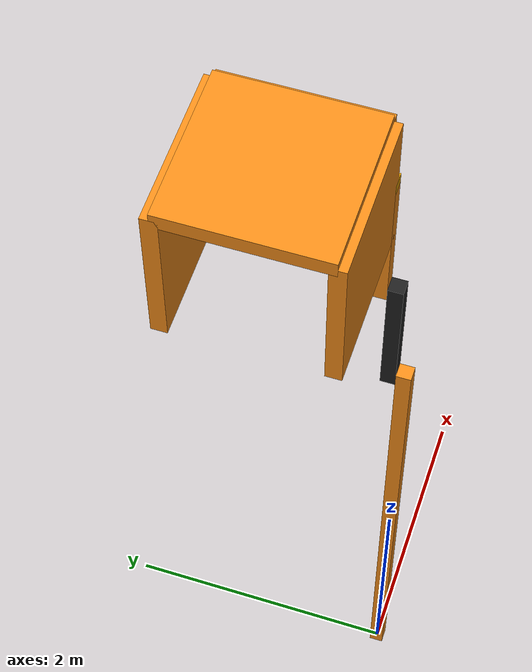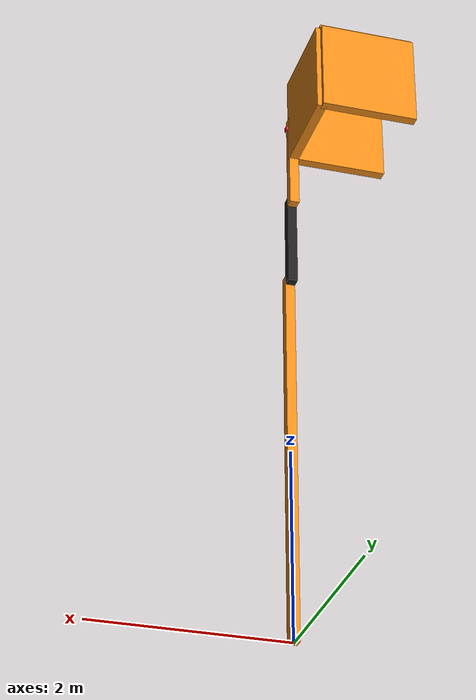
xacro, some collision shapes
<?xml version="1.0"?>
<!-- Revolute-Revolute Manipulator -->
<robot name="rrbot" xmlns:xacro="http://www.ros.org/wiki/xacro">

  <!-- Constants for robot dimensions -->
  <xacro:property name="PI" value="3.1415926535897931"/>
  <xacro:property name="mass" value="1" /> <!-- arbitrary value for mass -->
  <xacro:property name="width" value="0.1" /> <!-- Square dimensions (widthxwidth) of beams -->
  <xacro:property name="height1" value="4" /> <!-- Link 1 -->
  <xacro:property name="height2" value="1" /> <!-- Link 2 -->
  <xacro:property name="height3" value="1" /> <!-- Link 3 -->
  <xacro:property name="camera_link" value="0.05" /> <!-- Size of square 'camera' box -->
  <xacro:property name="axel_offset" value="0.05" /> <!-- Space btw top of beam and the each joint -->

  <!-- Import all Gazebo-customization elements, including Gazebo colors -->
  <xacro:include filename="$(find rrbot_description)/urdf/rrbot.gazebo" />
  <!-- Import Rviz colors -->
  <xacro:include filename="$(find rrbot_description)/urdf/materials.xacro" />

  <!-- Used for fixing robot to Gazebo 'base_link' -->
  <link name="world"/>

  <joint name="fixed" type="fixed">
    <parent link="world"/>
    <child link="link1"/>
  </joint>

  <!-- Box Links-->
  <link name="box1">
    <collision>
      <origin xyz="0 0 0" rpy="0 0 0"/>
      <geometry>
	<box size="0.1 1 1"/>
      </geometry>
    </collision>
    <visual>
      <origin xyz="0 0 0" rpy="0 0 0"/>
      <geometry>
	<box size="0.1 1 1"/>
      </geometry>
      <material name="orange"/>
    </visual>
  </link>
  <joint name="boxjoint1" type="fixed">
    <parent link="link3"/>
    <child link="box1"/>
    <origin xyz="0 0.5 1" rpy="0 0 0"/>
    <axis xyz="0 1 0"/>
    <dynamics damping="0.7"/>
  </joint>

  <link name="box2">
    <collision>
      <origin xyz="0 0 0" rpy="0 0 0"/>
      <geometry>
	<box size="1 0.1 1"/>
      </geometry>
    </collision>
    <visual>
      <origin xyz="0 0 0" rpy="0 0 0"/>
      <geometry>
	<box size="1 0.1 1"/>
      </geometry>
      <material name="orange"/>
    </visual>
  </link>
  <joint name="boxjoint2" type="fixed">
    <parent link="link3"/>
    <child link="box2"/>
    <origin xyz="-0.5 1 1" rpy="0 0 0"/>
    <axis xyz="0 1 0"/>
    <dynamics damping="0.7"/>
  </joint>

  <link name="box3">
    <collision>
      <origin xyz="0 0 0" rpy="0 0 0"/>
      <geometry>
	<box size="1 0.1 1"/>
      </geometry>
    </collision>
    <visual>
      <origin xyz="0 0 0" rpy="0 0 0"/>
      <geometry>
	<box size="1 0.1 1"/>
      </geometry>
      <material name="orange"/>
    </visual>
  </link>
  <joint name="boxjoint3" type="fixed">
    <parent link="link3"/>
    <child link="box3"/>
    <origin xyz="-0.5 0 1" rpy="0 0 0"/>
    <axis xyz="0 1 0"/>
    <dynamics damping="0.7"/>
  </joint>

  <link name="box4">
    <collision>
      <origin xyz="0 0 0" rpy="0 0 0"/>
      <geometry>
	<box size="1 1 0.1"/>
      </geometry>
    </collision>
    <visual>
      <origin xyz="0 0 0" rpy="0 0 0"/>
      <geometry>
	<box size="1 1 0.1"/>
      </geometry>
      <material name="orange"/>
    </visual>
  </link>
  <joint name="boxjoint4" type="fixed">
    <parent link="link3"/>
    <child link="box4"/>
    <origin xyz="-0.5 0.5 1.5" rpy="0 0 0"/>
    <axis xyz="0 1 0"/>
    <dynamics damping="0.7"/>
  </joint>

  <!-- End Box Links-->

  <!-- Base Link -->
  <link name="link1">
    <collision>
      <origin xyz="0 0 ${height1/2}" rpy="0 0 0"/>
      <geometry>
	<box size="${width} ${width} ${height1}"/>
      </geometry>
    </collision>

    <visual>
      <origin xyz="0 0 ${height1/2}" rpy="0 0 0"/>
      <geometry>
	<box size="${width} ${width} ${height1}"/>
      </geometry>
      <material name="orange"/>
    </visual>

    <inertial>
      <origin xyz="0 0 ${height1/2}" rpy="0 0 0"/>
      <mass value="${mass}"/>
      <inertia
	  ixx="${mass / 12.0 * (width*width + height1*height1)}" ixy="0.0" ixz="0.0"
	  iyy="${mass / 12.0 * (height1*height1 + width*width)}" iyz="0.0"
	  izz="${mass / 12.0 * (width*width + width*width)}"/>
    </inertial>
  </link>

  <joint name="joint1" type="continuous">
    <parent link="link1"/>
    <child link="link2"/>
    <origin xyz="0 ${width} ${height1 - axel_offset}" rpy="0 0 0"/>
    <axis xyz="0 1 0"/>
    <dynamics damping="0.7"/>
  </joint>

  <!-- Middle Link -->
  <link name="link2">
    <collision>
      <origin xyz="0 0 ${height2/2 - axel_offset}" rpy="0 0 0"/>
      <geometry>
	<box size="${width} ${width} ${height2}"/>
      </geometry>
    </collision>

    <visual>
      <origin xyz="0 0 ${height2/2 - axel_offset}" rpy="0 0 0"/>
      <geometry>
	<box size="${width} ${width} ${height2}"/>
      </geometry>
      <material name="black"/>
    </visual>

    <inertial>
      <origin xyz="0 0 ${height2/2 - axel_offset}" rpy="0 0 0"/>
      <mass value="${mass}"/>
      <inertia
	  ixx="${mass / 12.0 * (width*width + height2*height2)}" ixy="0.0" ixz="0.0"
	  iyy="${mass / 12.0 * (height2*height2 + width*width)}" iyz="0.0"
	  izz="${mass / 12.0 * (width*width + width*width)}"/>
    </inertial>
  </link>

  <joint name="joint2" type="continuous">
    <parent link="link2"/>
    <child link="link3"/>
    <origin xyz="0 ${width} ${height2 - axel_offset*2}" rpy="0 0 0"/>
    <axis xyz="0 1 0"/>
    <dynamics damping="100000" friction="100000"/>
  </joint>

  <!-- Top Link -->
  <link name="link3">
    <collision>
      <origin xyz="0 0 ${height3/2 - axel_offset}" rpy="0 0 0"/>
      <geometry>
	<box size="${width} ${width} ${height3}"/>
      </geometry>
    </collision>

    <visual>
      <origin xyz="0 0 ${height3/2 - axel_offset}" rpy="0 0 0"/>
      <geometry>
	<box size="${width} ${width} ${height3}"/>
      </geometry>
      <material name="orange"/>
    </visual>

    <inertial>
      <origin xyz="0 0 ${height3/2 - axel_offset}" rpy="0 0 0"/>
      <mass value="${mass}"/>
      <inertia
	  ixx="${mass / 12.0 * (width*width + height3*height3)}" ixy="0.0" ixz="0.0"
	  iyy="${mass / 12.0 * (height3*height3 + width*width)}" iyz="0.0"
	  izz="${mass / 12.0 * (width*width + width*width)}"/>
    </inertial>
  </link>

  <joint name="hokuyo_joint" type="fixed">
    <axis xyz="0 1 0" />
    <origin xyz="0 0 ${height3 - axel_offset/2}" rpy="0 0 0"/>
    <parent link="link3"/>
    <child link="hokuyo_link"/>
  </joint>

  <!-- Hokuyo Laser -->
  <link name="hokuyo_link">
    <collision>
      <origin xyz="0 0 0" rpy="0 0 0"/>
      <geometry>
	<box size="0.1 0.1 0.1"/>
      </geometry>
    </collision>

    <visual>
      <origin xyz="0 0 0" rpy="0 0 0"/>
      <geometry>
        <mesh filename="package://rrbot_description/meshes/hokuyo.dae"/>
      </geometry>
    </visual>

    <inertial>
      <mass value="1e-5" />
      <origin xyz="0 0 0" rpy="0 0 0"/>
      <inertia ixx="1e-6" ixy="0" ixz="0" iyy="1e-6" iyz="0" izz="1e-6" />
    </inertial>
  </link>

  <joint name="camera_joint" type="fixed">
    <axis xyz="0 1 0" />
    <origin xyz="${camera_link} 0 ${height3 - axel_offset*2}" rpy="0 0 0"/>
    <parent link="link3"/>
    <child link="camera_link"/>
  </joint>

  <!-- Camera -->
  <link name="camera_link">
    <collision>
      <origin xyz="0 0 0" rpy="0 0 0"/>
      <geometry>
	<box size="${camera_link} ${camera_link} ${camera_link}"/>
      </geometry>
    </collision>

    <visual>
      <origin xyz="0 0 0" rpy="0 0 0"/>
      <geometry>
	<box size="${camera_link} ${camera_link} ${camera_link}"/>
      </geometry>
      <material name="red"/>
    </visual>

    <inertial>
      <mass value="1e-5" />
      <origin xyz="0 0 0" rpy="0 0 0"/>
      <inertia ixx="1e-6" ixy="0" ixz="0" iyy="1e-6" iyz="0" izz="1e-6" />
    </inertial>
  </link>

  <!-- generate an optical frame http://www.ros.org/reps/rep-0103.html#suffix-frames
      so that ros and opencv can operate on the camera frame correctly -->
  <joint name="camera_optical_joint" type="fixed">
    <!-- these values have to be these values otherwise the gazebo camera image
        won't be aligned properly with the frame it is supposedly originating from -->
    <origin xyz="0 0 0" rpy="${-pi/2} 0 ${-pi/2}"/>
    <parent link="camera_link"/>
    <child link="camera_link_optical"/>
  </joint>

  <link name="camera_link_optical">
  </link>

  <transmission name="tran1">
    <type>transmission_interface/SimpleTransmission</type>
    <joint name="joint1">
      <hardwareInterface>hardware_interface/VelocityJointInterface</hardwareInterface>
    </joint>
    <actuator name="motor1">
      <hardwareInterface>hardware_interface/VelocityJointInterface</hardwareInterface>
      <mechanicalReduction>1</mechanicalReduction>
    </actuator>
  </transmission>

  <transmission name="tran2">
    <type>transmission_interface/SimpleTransmission</type>
    <joint name="joint2">
      <hardwareInterface>hardware_interface/VelocityJointInterface</hardwareInterface>
    </joint>
    <actuator name="motor2">
      <hardwareInterface>hardware_interface/VelocityJointInterface</hardwareInterface>
      <mechanicalReduction>1</mechanicalReduction>
    </actuator>
  </transmission>

</robot>
